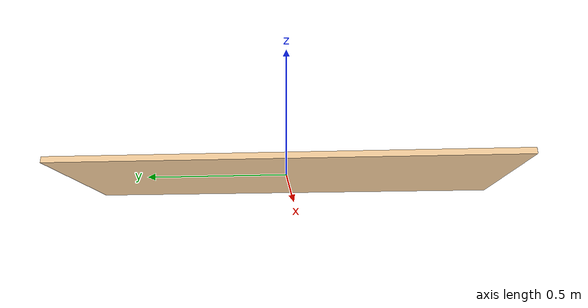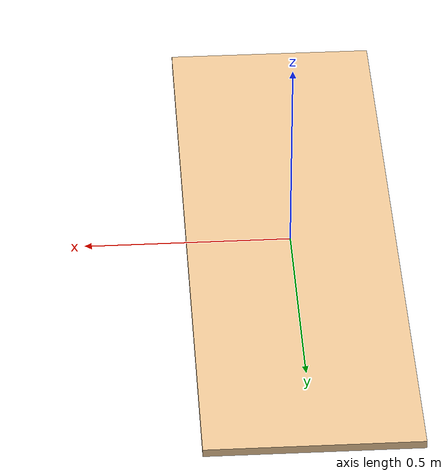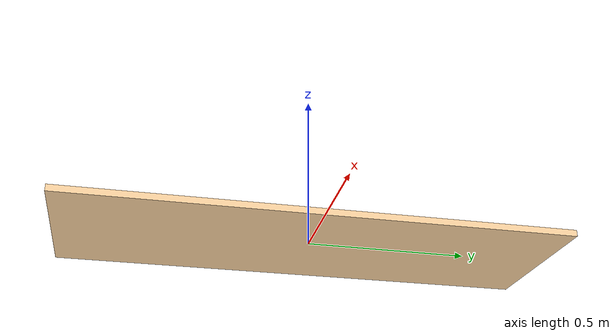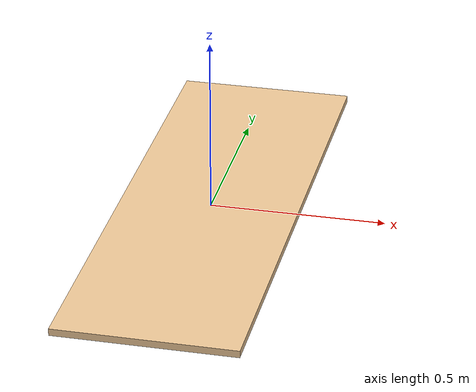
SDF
<?xml version="1.0"?>
<sdf version="1.7">
  <model name="wooden_table">
    <link name="body">
      <visual name="table_visual">
        <pose> 0.0 0 0 0 0 1.57</pose>
        <geometry>
          <box>
            <size> 1.525 .508 0.02</size>
          </box>
        </geometry>
        <material>
          <diffuse>0.941 0.792 0.6 1.0</diffuse>
        </material>
      </visual>
      <collision name="table_top">
        <pose> 0.0 0 0 0 0 1.57</pose>
        <geometry>
          <box>
            <size> 1.525 .508 0.02</size>
          </box>
        </geometry>
          <drake:proximity_properties>
          <drake:compliant_hydroelastic/>
            <drake:hydroelastic_modulus>1.0e8</drake:hydroelastic_modulus>
        </drake:proximity_properties>
      </collision>
    </link>
  </model>
</sdf>
